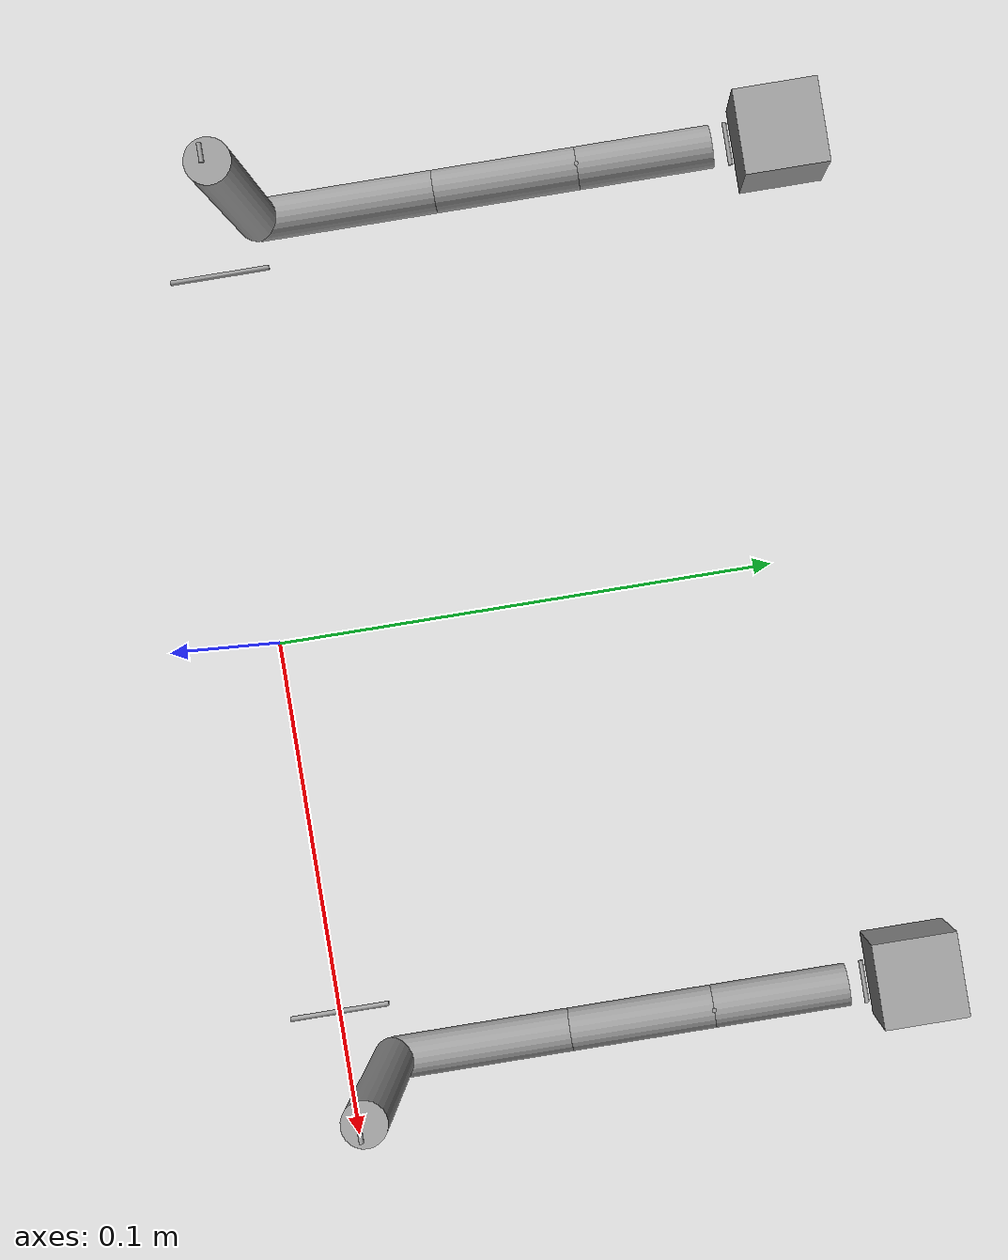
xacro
<?xml version="1.0"?>
<robot xmlns:xacro="http://www.ros.org/wiki/xacro">

<link name="arms" />

<xacro:macro name="arm" params="prefix reflect">
  <link name="${prefix}_arm" />

  <link name="${prefix}_shoulder_flappy">
    <visual>
      <origin rpy="${pi/2} 0 0" xyz="0 0 0" />
      <geometry>
        <cylinder length="0.02" radius="0.0005" />
      </geometry>
      <material name="grey" />
    </visual>
  </link>

  <link name="${prefix}_shoulder_foreaft">
    <visual>
      <origin rpy="0 ${pi/2} 0" xyz="0 0 0" />
      <geometry>
        <cylinder length="0.004" radius="0.0005" />
      </geometry>
      <material name="grey" />
    </visual>
  </link>

  <link name="${prefix}_shoulder_rotate">
    <visual>
      <origin rpy="0 0 0" xyz="0 0 0" />
      <geometry>
        <cylinder length="0.004" radius="0.0005" />
      </geometry>
      <material name="grey" />
    </visual>
    <visual>
      <origin rpy="0 0 0" xyz="0 0 0.03" />
      <geometry>
        <cylinder length="0.06" radius="0.005" />
      </geometry>
      <material name="grey" />
    </visual>
  </link>

  <link name="${prefix}_elbow">
    <visual>
      <origin rpy="${pi/2} 0 0" xyz="0 0 0" />
      <geometry>
        <cylinder length="0.004" radius="0.0005" />
      </geometry>
      <material name="grey" />
    </visual>
    <visual>
      <origin rpy="0 ${pi/2} 0" xyz="0.021 0 0" />
      <geometry>
        <cylinder length="0.042" radius="0.005" />
      </geometry>
      <material name="grey" />
    </visual>
  </link>

  <link name="${prefix}_wrist_rotate">
    <visual>
      <origin rpy="0 ${pi/2} 0" xyz="0 0 0" />
      <geometry>
        <cylinder length="0.004" radius="0.0005" />
      </geometry>
      <material name="grey" />
    </visual>
    <visual>
      <origin rpy="0 ${pi/2} 0" xyz="0.017 0 0" />
      <geometry>
        <cylinder length="0.034" radius="0.005" />
      </geometry>
      <material name="grey" />
    </visual>
  </link>

  <link name="${prefix}_wrist_pan">
    <visual>
      <geometry>
        <cylinder length="0.01" radius="0.0005" />
      </geometry>
      <material name="grey" />
    </visual>

    <visual>
      <origin rpy="0 ${pi/2} 0" xyz="0.016 0 0" />
      <geometry>
        <cylinder length="0.032" radius="0.005" />
      </geometry>
      <material name="grey" />
    </visual>
  </link>

  <link name="${prefix}_wrist_tilt">
    <visual>
      <geometry>
        <cylinder length="0.01" radius="0.0005" />
      </geometry>
      <material name="grey" />
    </visual>
  </link>

  <link name="${prefix}_hand">
    <visual>
      <geometry>
        <box size="0.02 0.02 0.02" />
      </geometry>
      <material name="grey" />
    </visual>
  </link>

  <link name="${prefix}_gripper" />

  <joint name="arms_${prefix}_arm" type="fixed">
    <origin rpy="0 0 0" xyz="${reflect * -0.075} 0 0" />
    <parent link="arms" />
    <child link="${prefix}_arm" />
  </joint>

  <joint name="${prefix}_arm_${prefix}_shoulder_flappy_joint" type="revolute">
    <origin rpy="0 0 0" xyz="0 0 0" />
    <parent link="${prefix}_arm" />
    <child link="${prefix}_shoulder_flappy" />
    <axis xyz="0 -1 0" />
    <limit effort="10" lower="-${pi/2}" upper="${pi/2}" velocity="1000" />
  </joint>

  <joint name="${prefix}_shoulder_flappy_${prefix}_shoulder_foreaft_joint" type="revolute">
    <origin rpy="0 0 0" xyz="${reflect * -0.025} 0 0" />
    <parent link="${prefix}_shoulder_flappy" />
    <child link="${prefix}_shoulder_foreaft" />
    <axis xyz="${reflect} 0 0" />
    <limit effort="10" lower="-${pi/2}" upper="${pi/2}" velocity="1000" />
  </joint>

  <joint name="${prefix}_shoulder_foreaft_${prefix}_shoulder_rotate_joint" type="revolute">
    <origin rpy="0 0 -${pi/2}" xyz="0 0 -0.067" />
    <parent link="${prefix}_shoulder_foreaft" />
    <child link="${prefix}_shoulder_rotate" />
    <axis xyz="0 0 -1" />
    <limit effort="10" lower="-${pi/2}" upper="${pi/2}" velocity="1000" />
  </joint>

  <joint name="${prefix}_shoulder_rotate_${prefix}_elbow_joint" type="revolute">
    <origin rpy="0 ${pi} 0" xyz="0 0 0" />
    <parent link="${prefix}_shoulder_rotate" />
    <child link="${prefix}_elbow" />
    <axis xyz="0 ${reflect} 0" />
    <limit effort="10" lower="-${pi/2}" upper="${pi/2}" velocity="1000" />
  </joint>

  <joint name="${prefix}_forearm_${prefix}_wrist_rotate_joint" type="revolute">
    <origin rpy="0 0 0" xyz="0.042 0 0" />
    <parent link="${prefix}_elbow" />
    <child link="${prefix}_wrist_rotate" />
    <axis xyz="1 0 0" />
    <limit effort="10" lower="-${pi/2}" upper="${pi/2}" velocity="1000" />
  </joint>

  <joint name="${prefix}_wrist_rotate_${prefix}_wrist_pan_joint" type="revolute">
    <origin rpy="0 0 0" xyz="0.034 0 0" />
    <parent link="${prefix}_wrist_rotate" />
    <child link="${prefix}_wrist_pan" />
    <axis xyz="0 0 1" />
    <limit effort="10" lower="-${pi/2}" upper="${pi/2}" velocity="1000" />
  </joint>

  <joint name="${prefix}_wrist_pan_${prefix}_wrist_tilt_joint" type="revolute">
    <origin rpy="1.57 0 0" xyz="0.036 0 0" />
    <parent link="${prefix}_wrist_pan" />
    <child link="${prefix}_wrist_tilt" />
    <axis xyz="0 0 ${reflect}" />
    <limit effort="10" lower="-${pi/2}" upper="${pi/2}" velocity="1000" />
  </joint>

  <joint name="${prefix}_wrist_tilt_${prefix}_hand_joint" type="fixed">
    <origin xyz="0.012 0 0" />
    <parent link="${prefix}_wrist_tilt" />
    <child link="${prefix}_hand" />
  </joint>

  <joint name="${prefix}_hand_joint_${prefix}_gripper" type="revolute">
    <origin xyz="0 0 0" />
    <parent link="${prefix}_hand" />
    <child link="${prefix}_gripper" />
    <axis xyz="0 0 ${reflect}" />
    <limit effort="10" lower="-${pi/2}" upper="${pi/2}" velocity="1000" />
  </joint>
</xacro:macro>

<xacro:arm prefix="left" reflect="1"/>
<xacro:arm prefix="right" reflect="-1"/>

</robot>
